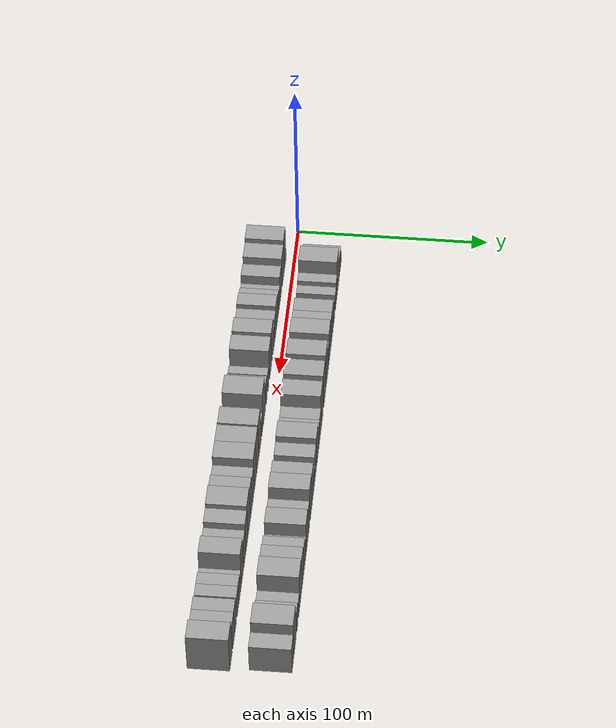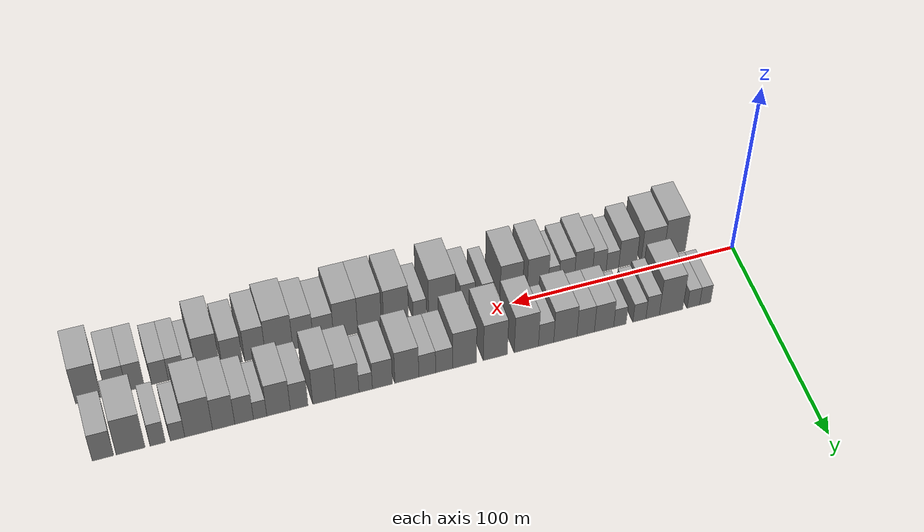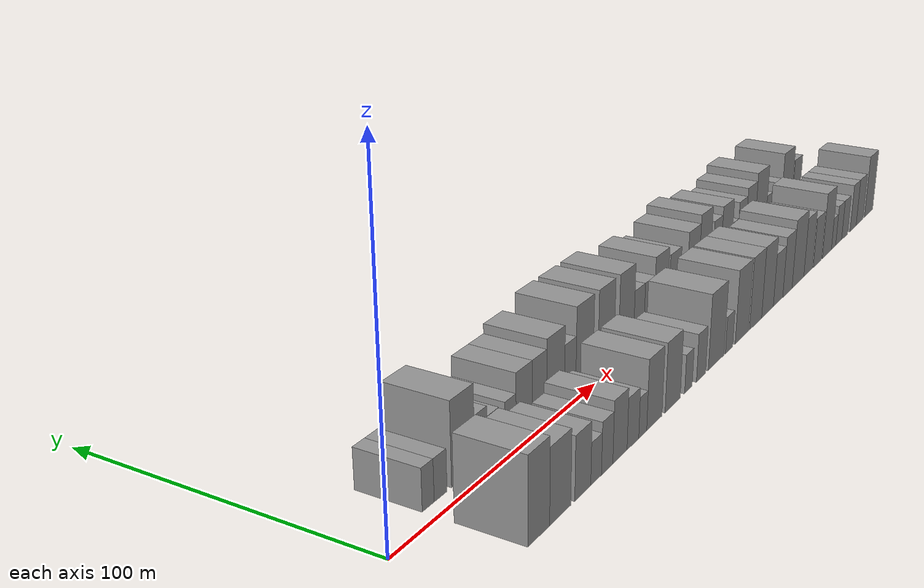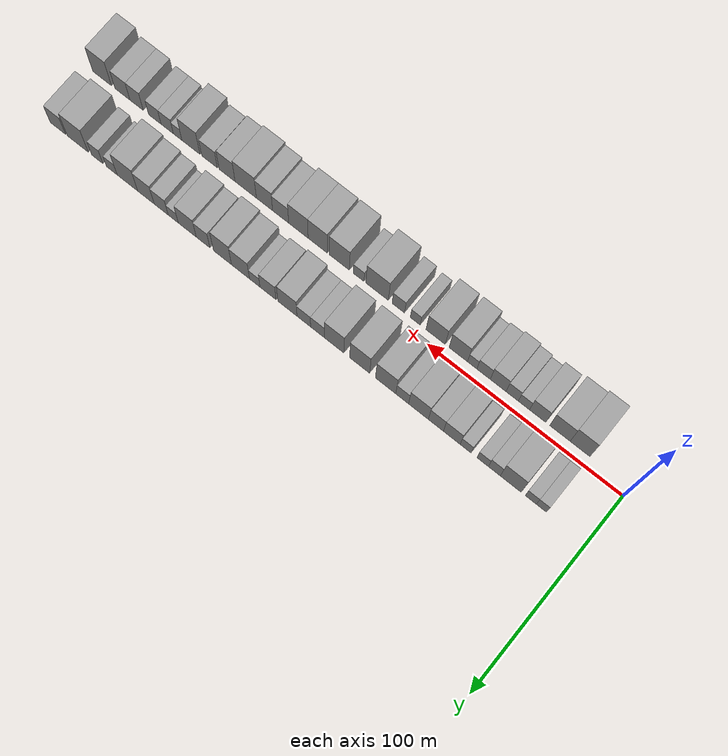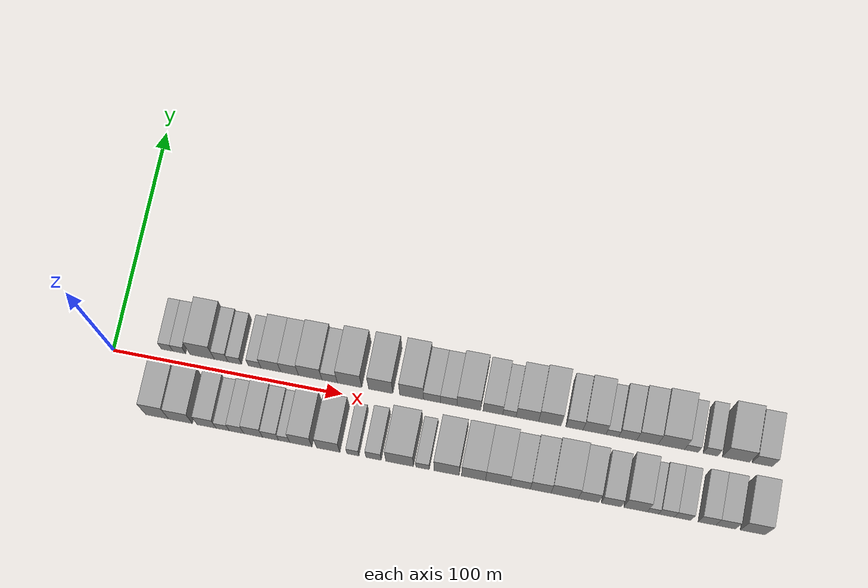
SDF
<sdf version="1.6">
 <world name="default">
  <scene>
   <sky><clouds><speed>12</speed></clouds></sky>
   <ambient>0.4 0.4 0.4 1</ambient>
   <background>0.7 0.7 0.7 1</background>
   <shadows>1</shadows>
  </scene>
  <gravity>0 0 -9.8066</gravity>
  <magnetic_field>6e-06 2.3e-05 -4.2e-05</magnetic_field>
  <physics default="0" name="default_physics" type="ode">
   <ode>
    <solver>
     <type>quick</type>
     <iters>10</iters>
     <sor>1.0</sor>
     <use_dynamic_moi_rescaling>0</use_dynamic_moi_rescaling>
    </solver>
    <constraints>
     <cfm>0</cfm>
     <erp>0.2</erp>
     <contact_max_correcting_vel>100</contact_max_correcting_vel>
     <contact_surface_layer>0.001</contact_surface_layer>
    </constraints>
   </ode>
   <max_step_size>0.004</max_step_size>
   <real_time_factor>1</real_time_factor>
   <real_time_update_rate>250</real_time_update_rate>
  </physics>
  <light name="sun" type="directional">
   <pose>0 0 10 0 0 0</pose>
   <diffuse>0.8 0.8 0.8 1</diffuse>
   <specular>0.2 0.2 0.2 1</specular>
   <attenuation>
    <range>1000</range>
    <constant>0.9</constant>
    <linear>0.01</linear>
    <quadratic>0.001</quadratic>
   </attenuation>
   <direction>-0.5 0.1 -0.9</direction>
  </light>
  <model name="building_1">
   <static>1</static>
   <pose>22.5390 14.5000 0 0.000000 0.000000 1.570796</pose>
   <link name="link">
    <pose>0 0 6.00 0 0 0</pose>
    <collision name="collision"><geometry><box><size>20.0000 5.0780 12.0000</size></box></geometry></collision>
    <visual name="visual">
     <cast_shadows>0</cast_shadows>
     <geometry><box><size>20.0000 5.0780 12.0000</size></box></geometry>
     <material>
      <script>
       <uri>model://grey_wall/materials/scripts</uri>
       <uri>model://grey_wall/materials/textures</uri>
       <name>vrc/grey_wall</name>
      </script>
     </material>
    </visual>
   </link>
  </model>
  <model name="building_2">
   <static>1</static>
   <pose>27.8848 14.5000 0 0.000000 0.000000 1.570796</pose>
   <link name="link">
    <pose>0 0 6.00 0 0 0</pose>
    <collision name="collision"><geometry><box><size>20.0000 5.6136 12.0000</size></box></geometry></collision>
    <visual name="visual">
     <cast_shadows>0</cast_shadows>
     <geometry><box><size>20.0000 5.6136 12.0000</size></box></geometry>
     <material>
      <script>
       <uri>model://grey_wall/materials/scripts</uri>
       <uri>model://grey_wall/materials/textures</uri>
       <name>vrc/grey_wall</name>
      </script>
     </material>
    </visual>
   </link>
  </model>
  <model name="building_3">
   <static>1</static>
   <pose>37.9862 14.5000 0 0.000000 0.000000 1.570796</pose>
   <link name="link">
    <pose>0 0 12.00 0 0 0</pose>
    <collision name="collision"><geometry><box><size>20.0000 10.5893 24.0000</size></box></geometry></collision>
    <visual name="visual">
     <cast_shadows>0</cast_shadows>
     <geometry><box><size>20.0000 10.5893 24.0000</size></box></geometry>
     <material>
      <script>
       <uri>model://grey_wall/materials/scripts</uri>
       <uri>model://grey_wall/materials/textures</uri>
       <name>vrc/grey_wall</name>
      </script>
     </material>
    </visual>
   </link>
  </model>
  <model name="building_4">
   <static>1</static>
   <pose>46.3003 14.5000 0 0.000000 0.000000 1.570796</pose>
   <link name="link">
    <pose>0 0 7.50 0 0 0</pose>
    <collision name="collision"><geometry><box><size>20.0000 6.0389 15.0000</size></box></geometry></collision>
    <visual name="visual">
     <cast_shadows>0</cast_shadows>
     <geometry><box><size>20.0000 6.0389 15.0000</size></box></geometry>
     <material>
      <script>
       <uri>model://grey_wall/materials/scripts</uri>
       <uri>model://grey_wall/materials/textures</uri>
       <name>vrc/grey_wall</name>
      </script>
     </material>
    </visual>
   </link>
  </model>
  <model name="building_5">
   <static>1</static>
   <pose>52.2205 14.5000 0 0.000000 0.000000 1.570796</pose>
   <link name="link">
    <pose>0 0 6.00 0 0 0</pose>
    <collision name="collision"><geometry><box><size>20.0000 5.8016 12.0000</size></box></geometry></collision>
    <visual name="visual">
     <cast_shadows>0</cast_shadows>
     <geometry><box><size>20.0000 5.8016 12.0000</size></box></geometry>
     <material>
      <script>
       <uri>model://grey_wall/materials/scripts</uri>
       <uri>model://grey_wall/materials/textures</uri>
       <name>vrc/grey_wall</name>
      </script>
     </material>
    </visual>
   </link>
  </model>
  <model name="building_6">
   <static>1</static>
   <pose>60.9274 14.5000 0 0.000000 0.000000 1.570796</pose>
   <link name="link">
    <pose>0 0 6.00 0 0 0</pose>
    <collision name="collision"><geometry><box><size>20.0000 5.6122 12.0000</size></box></geometry></collision>
    <visual name="visual">
     <cast_shadows>0</cast_shadows>
     <geometry><box><size>20.0000 5.6122 12.0000</size></box></geometry>
     <material>
      <script>
       <uri>model://grey_wall/materials/scripts</uri>
       <uri>model://grey_wall/materials/textures</uri>
       <name>vrc/grey_wall</name>
      </script>
     </material>
    </visual>
   </link>
  </model>
  <model name="building_7">
   <static>1</static>
   <pose>68.0220 14.5000 0 0.000000 0.000000 1.570796</pose>
   <link name="link">
    <pose>0 0 9.00 0 0 0</pose>
    <collision name="collision"><geometry><box><size>20.0000 8.5771 18.0000</size></box></geometry></collision>
    <visual name="visual">
     <cast_shadows>0</cast_shadows>
     <geometry><box><size>20.0000 8.5771 18.0000</size></box></geometry>
     <material>
      <script>
       <uri>model://grey_wall/materials/scripts</uri>
       <uri>model://grey_wall/materials/textures</uri>
       <name>vrc/grey_wall</name>
      </script>
     </material>
    </visual>
   </link>
  </model>
  <model name="building_8">
   <static>1</static>
   <pose>76.1881 14.5000 0 0.000000 0.000000 1.570796</pose>
   <link name="link">
    <pose>0 0 9.00 0 0 0</pose>
    <collision name="collision"><geometry><box><size>20.0000 7.7549 18.0000</size></box></geometry></collision>
    <visual name="visual">
     <cast_shadows>0</cast_shadows>
     <geometry><box><size>20.0000 7.7549 18.0000</size></box></geometry>
     <material>
      <script>
       <uri>model://grey_wall/materials/scripts</uri>
       <uri>model://grey_wall/materials/textures</uri>
       <name>vrc/grey_wall</name>
      </script>
     </material>
    </visual>
   </link>
  </model>
  <model name="building_9">
   <static>1</static>
   <pose>85.1828 14.5000 0 0.000000 0.000000 1.570796</pose>
   <link name="link">
    <pose>0 0 10.50 0 0 0</pose>
    <collision name="collision"><geometry><box><size>20.0000 10.2346 21.0000</size></box></geometry></collision>
    <visual name="visual">
     <cast_shadows>0</cast_shadows>
     <geometry><box><size>20.0000 10.2346 21.0000</size></box></geometry>
     <material>
      <script>
       <uri>model://grey_wall/materials/scripts</uri>
       <uri>model://grey_wall/materials/textures</uri>
       <name>vrc/grey_wall</name>
      </script>
     </material>
    </visual>
   </link>
  </model>
  <model name="building_10">
   <static>1</static>
   <pose>93.6424 14.5000 0 0.000000 0.000000 1.570796</pose>
   <link name="link">
    <pose>0 0 7.50 0 0 0</pose>
    <collision name="collision"><geometry><box><size>20.0000 6.6845 15.0000</size></box></geometry></collision>
    <visual name="visual">
     <cast_shadows>0</cast_shadows>
     <geometry><box><size>20.0000 6.6845 15.0000</size></box></geometry>
     <material>
      <script>
       <uri>model://grey_wall/materials/scripts</uri>
       <uri>model://grey_wall/materials/textures</uri>
       <name>vrc/grey_wall</name>
      </script>
     </material>
    </visual>
   </link>
  </model>
  <model name="building_11">
   <static>1</static>
   <pose>102.2817 14.5000 0 0.000000 0.000000 1.570796</pose>
   <link name="link">
    <pose>0 0 12.00 0 0 0</pose>
    <collision name="collision"><geometry><box><size>20.0000 10.5940 24.0000</size></box></geometry></collision>
    <visual name="visual">
     <cast_shadows>0</cast_shadows>
     <geometry><box><size>20.0000 10.5940 24.0000</size></box></geometry>
     <material>
      <script>
       <uri>model://grey_wall/materials/scripts</uri>
       <uri>model://grey_wall/materials/textures</uri>
       <name>vrc/grey_wall</name>
      </script>
     </material>
    </visual>
   </link>
  </model>
  <model name="building_12">
   <static>1</static>
   <pose>115.8133 14.5000 0 0.000000 0.000000 1.570796</pose>
   <link name="link">
    <pose>0 0 12.00 0 0 0</pose>
    <collision name="collision"><geometry><box><size>20.0000 10.4693 24.0000</size></box></geometry></collision>
    <visual name="visual">
     <cast_shadows>0</cast_shadows>
     <geometry><box><size>20.0000 10.4693 24.0000</size></box></geometry>
     <material>
      <script>
       <uri>model://grey_wall/materials/scripts</uri>
       <uri>model://grey_wall/materials/textures</uri>
       <name>vrc/grey_wall</name>
      </script>
     </material>
    </visual>
   </link>
  </model>
  <model name="building_13">
   <static>1</static>
   <pose>129.2058 14.5000 0 0.000000 0.000000 1.570796</pose>
   <link name="link">
    <pose>0 0 12.00 0 0 0</pose>
    <collision name="collision"><geometry><box><size>20.0000 10.3158 24.0000</size></box></geometry></collision>
    <visual name="visual">
     <cast_shadows>0</cast_shadows>
     <geometry><box><size>20.0000 10.3158 24.0000</size></box></geometry>
     <material>
      <script>
       <uri>model://grey_wall/materials/scripts</uri>
       <uri>model://grey_wall/materials/textures</uri>
       <name>vrc/grey_wall</name>
      </script>
     </material>
    </visual>
   </link>
  </model>
  <model name="building_14">
   <static>1</static>
   <pose>138.0146 14.5000 0 0.000000 0.000000 1.570796</pose>
   <link name="link">
    <pose>0 0 7.50 0 0 0</pose>
    <collision name="collision"><geometry><box><size>20.0000 7.3017 15.0000</size></box></geometry></collision>
    <visual name="visual">
     <cast_shadows>0</cast_shadows>
     <geometry><box><size>20.0000 7.3017 15.0000</size></box></geometry>
     <material>
      <script>
       <uri>model://grey_wall/materials/scripts</uri>
       <uri>model://grey_wall/materials/textures</uri>
       <name>vrc/grey_wall</name>
      </script>
     </material>
    </visual>
   </link>
  </model>
  <model name="building_15">
   <static>1</static>
   <pose>145.2648 14.5000 0 0.000000 0.000000 1.570796</pose>
   <link name="link">
    <pose>0 0 7.50 0 0 0</pose>
    <collision name="collision"><geometry><box><size>20.0000 7.1987 15.0000</size></box></geometry></collision>
    <visual name="visual">
     <cast_shadows>0</cast_shadows>
     <geometry><box><size>20.0000 7.1987 15.0000</size></box></geometry>
     <material>
      <script>
       <uri>model://grey_wall/materials/scripts</uri>
       <uri>model://grey_wall/materials/textures</uri>
       <name>vrc/grey_wall</name>
      </script>
     </material>
    </visual>
   </link>
  </model>
  <model name="building_16">
   <static>1</static>
   <pose>153.9659 14.5000 0 0.000000 0.000000 1.570796</pose>
   <link name="link">
    <pose>0 0 10.50 0 0 0</pose>
    <collision name="collision"><geometry><box><size>20.0000 10.2035 21.0000</size></box></geometry></collision>
    <visual name="visual">
     <cast_shadows>0</cast_shadows>
     <geometry><box><size>20.0000 10.2035 21.0000</size></box></geometry>
     <material>
      <script>
       <uri>model://grey_wall/materials/scripts</uri>
       <uri>model://grey_wall/materials/textures</uri>
       <name>vrc/grey_wall</name>
      </script>
     </material>
    </visual>
   </link>
  </model>
  <model name="building_17">
   <static>1</static>
   <pose>164.3430 14.5000 0 0.000000 0.000000 1.570796</pose>
   <link name="link">
    <pose>0 0 9.00 0 0 0</pose>
    <collision name="collision"><geometry><box><size>20.0000 8.5507 18.0000</size></box></geometry></collision>
    <visual name="visual">
     <cast_shadows>0</cast_shadows>
     <geometry><box><size>20.0000 8.5507 18.0000</size></box></geometry>
     <material>
      <script>
       <uri>model://grey_wall/materials/scripts</uri>
       <uri>model://grey_wall/materials/textures</uri>
       <name>vrc/grey_wall</name>
      </script>
     </material>
    </visual>
   </link>
  </model>
  <model name="building_18">
   <static>1</static>
   <pose>171.4657 14.5000 0 0.000000 0.000000 1.570796</pose>
   <link name="link">
    <pose>0 0 6.00 0 0 0</pose>
    <collision name="collision"><geometry><box><size>20.0000 5.6948 12.0000</size></box></geometry></collision>
    <visual name="visual">
     <cast_shadows>0</cast_shadows>
     <geometry><box><size>20.0000 5.6948 12.0000</size></box></geometry>
     <material>
      <script>
       <uri>model://grey_wall/materials/scripts</uri>
       <uri>model://grey_wall/materials/textures</uri>
       <name>vrc/grey_wall</name>
      </script>
     </material>
    </visual>
   </link>
  </model>
  <model name="building_19">
   <static>1</static>
   <pose>179.1541 14.5000 0 0.000000 0.000000 1.570796</pose>
   <link name="link">
    <pose>0 0 10.50 0 0 0</pose>
    <collision name="collision"><geometry><box><size>20.0000 9.6819 21.0000</size></box></geometry></collision>
    <visual name="visual">
     <cast_shadows>0</cast_shadows>
     <geometry><box><size>20.0000 9.6819 21.0000</size></box></geometry>
     <material>
      <script>
       <uri>model://grey_wall/materials/scripts</uri>
       <uri>model://grey_wall/materials/textures</uri>
       <name>vrc/grey_wall</name>
      </script>
     </material>
    </visual>
   </link>
  </model>
  <model name="building_20">
   <static>1</static>
   <pose>188.8619 14.5000 0 0.000000 0.000000 1.570796</pose>
   <link name="link">
    <pose>0 0 12.00 0 0 0</pose>
    <collision name="collision"><geometry><box><size>20.0000 9.7337 24.0000</size></box></geometry></collision>
    <visual name="visual">
     <cast_shadows>0</cast_shadows>
     <geometry><box><size>20.0000 9.7337 24.0000</size></box></geometry>
     <material>
      <script>
       <uri>model://grey_wall/materials/scripts</uri>
       <uri>model://grey_wall/materials/textures</uri>
       <name>vrc/grey_wall</name>
      </script>
     </material>
    </visual>
   </link>
  </model>
  <model name="building_21">
   <static>1</static>
   <pose>199.4369 14.5000 0 0.000000 0.000000 1.570796</pose>
   <link name="link">
    <pose>0 0 9.00 0 0 0</pose>
    <collision name="collision"><geometry><box><size>20.0000 7.4164 18.0000</size></box></geometry></collision>
    <visual name="visual">
     <cast_shadows>0</cast_shadows>
     <geometry><box><size>20.0000 7.4164 18.0000</size></box></geometry>
     <material>
      <script>
       <uri>model://grey_wall/materials/scripts</uri>
       <uri>model://grey_wall/materials/textures</uri>
       <name>vrc/grey_wall</name>
      </script>
     </material>
    </visual>
   </link>
  </model>
  <model name="building_22">
   <static>1</static>
   <pose>208.0406 14.5000 0 0.000000 0.000000 1.570796</pose>
   <link name="link">
    <pose>0 0 10.50 0 0 0</pose>
    <collision name="collision"><geometry><box><size>20.0000 9.7910 21.0000</size></box></geometry></collision>
    <visual name="visual">
     <cast_shadows>0</cast_shadows>
     <geometry><box><size>20.0000 9.7910 21.0000</size></box></geometry>
     <material>
      <script>
       <uri>model://grey_wall/materials/scripts</uri>
       <uri>model://grey_wall/materials/textures</uri>
       <name>vrc/grey_wall</name>
      </script>
     </material>
    </visual>
   </link>
  </model>
  <model name="building_23">
   <static>1</static>
   <pose>215.6830 14.5000 0 0.000000 0.000000 1.570796</pose>
   <link name="link">
    <pose>0 0 6.00 0 0 0</pose>
    <collision name="collision"><geometry><box><size>20.0000 5.4938 12.0000</size></box></geometry></collision>
    <visual name="visual">
     <cast_shadows>0</cast_shadows>
     <geometry><box><size>20.0000 5.4938 12.0000</size></box></geometry>
     <material>
      <script>
       <uri>model://grey_wall/materials/scripts</uri>
       <uri>model://grey_wall/materials/textures</uri>
       <name>vrc/grey_wall</name>
      </script>
     </material>
    </visual>
   </link>
  </model>
  <model name="building_24">
   <static>1</static>
   <pose>222.2997 14.5000 0 0.000000 0.000000 1.570796</pose>
   <link name="link">
    <pose>0 0 9.00 0 0 0</pose>
    <collision name="collision"><geometry><box><size>20.0000 7.7396 18.0000</size></box></geometry></collision>
    <visual name="visual">
     <cast_shadows>0</cast_shadows>
     <geometry><box><size>20.0000 7.7396 18.0000</size></box></geometry>
     <material>
      <script>
       <uri>model://grey_wall/materials/scripts</uri>
       <uri>model://grey_wall/materials/textures</uri>
       <name>vrc/grey_wall</name>
      </script>
     </material>
    </visual>
   </link>
  </model>
  <model name="building_25">
   <static>1</static>
   <pose>230.7460 14.5000 0 0.000000 0.000000 1.570796</pose>
   <link name="link">
    <pose>0 0 10.50 0 0 0</pose>
    <collision name="collision"><geometry><box><size>20.0000 9.1529 21.0000</size></box></geometry></collision>
    <visual name="visual">
     <cast_shadows>0</cast_shadows>
     <geometry><box><size>20.0000 9.1529 21.0000</size></box></geometry>
     <material>
      <script>
       <uri>model://grey_wall/materials/scripts</uri>
       <uri>model://grey_wall/materials/textures</uri>
       <name>vrc/grey_wall</name>
      </script>
     </material>
    </visual>
   </link>
  </model>
  <model name="building_26">
   <static>1</static>
   <pose>240.9980 14.5000 0 0.000000 0.000000 1.570796</pose>
   <link name="link">
    <pose>0 0 12.00 0 0 0</pose>
    <collision name="collision"><geometry><box><size>20.0000 11.3510 24.0000</size></box></geometry></collision>
    <visual name="visual">
     <cast_shadows>0</cast_shadows>
     <geometry><box><size>20.0000 11.3510 24.0000</size></box></geometry>
     <material>
      <script>
       <uri>model://grey_wall/materials/scripts</uri>
       <uri>model://grey_wall/materials/textures</uri>
       <name>vrc/grey_wall</name>
      </script>
     </material>
    </visual>
   </link>
  </model>
  <model name="building_27">
   <static>1</static>
   <pose>249.6406 14.5000 0 0.000000 0.000000 1.570796</pose>
   <link name="link">
    <pose>0 0 6.00 0 0 0</pose>
    <collision name="collision"><geometry><box><size>20.0000 5.9344 12.0000</size></box></geometry></collision>
    <visual name="visual">
     <cast_shadows>0</cast_shadows>
     <geometry><box><size>20.0000 5.9344 12.0000</size></box></geometry>
     <material>
      <script>
       <uri>model://grey_wall/materials/scripts</uri>
       <uri>model://grey_wall/materials/textures</uri>
       <name>vrc/grey_wall</name>
      </script>
     </material>
    </visual>
   </link>
  </model>
  <model name="building_28">
   <static>1</static>
   <pose>257.7267 14.5000 0 0.000000 0.000000 1.570796</pose>
   <link name="link">
    <pose>0 0 7.50 0 0 0</pose>
    <collision name="collision"><geometry><box><size>20.0000 6.2377 15.0000</size></box></geometry></collision>
    <visual name="visual">
     <cast_shadows>0</cast_shadows>
     <geometry><box><size>20.0000 6.2377 15.0000</size></box></geometry>
     <material>
      <script>
       <uri>model://grey_wall/materials/scripts</uri>
       <uri>model://grey_wall/materials/textures</uri>
       <name>vrc/grey_wall</name>
      </script>
     </material>
    </visual>
   </link>
  </model>
  <model name="building_29">
   <static>1</static>
   <pose>268.7021 14.5000 0 0.000000 0.000000 1.570796</pose>
   <link name="link">
    <pose>0 0 12.00 0 0 0</pose>
    <collision name="collision"><geometry><box><size>20.0000 11.7132 24.0000</size></box></geometry></collision>
    <visual name="visual">
     <cast_shadows>0</cast_shadows>
     <geometry><box><size>20.0000 11.7132 24.0000</size></box></geometry>
     <material>
      <script>
       <uri>model://grey_wall/materials/scripts</uri>
       <uri>model://grey_wall/materials/textures</uri>
       <name>vrc/grey_wall</name>
      </script>
     </material>
    </visual>
   </link>
  </model>
  <model name="building_30">
   <static>1</static>
   <pose>279.8736 14.5000 0 0.000000 0.000000 1.570796</pose>
   <link name="link">
    <pose>0 0 9.00 0 0 0</pose>
    <collision name="collision"><geometry><box><size>20.0000 8.6298 18.0000</size></box></geometry></collision>
    <visual name="visual">
     <cast_shadows>0</cast_shadows>
     <geometry><box><size>20.0000 8.6298 18.0000</size></box></geometry>
     <material>
      <script>
       <uri>model://grey_wall/materials/scripts</uri>
       <uri>model://grey_wall/materials/textures</uri>
       <name>vrc/grey_wall</name>
      </script>
     </material>
    </visual>
   </link>
  </model>
  <model name="building_31">
   <static>1</static>
   <pose>24.9978 -14.5000 0 0.000000 0.000000 1.570796</pose>
   <link name="link">
    <pose>0 0 12.00 0 0 0</pose>
    <collision name="collision"><geometry><box><size>20.0000 9.9957 24.0000</size></box></geometry></collision>
    <visual name="visual">
     <cast_shadows>0</cast_shadows>
     <geometry><box><size>20.0000 9.9957 24.0000</size></box></geometry>
     <material>
      <script>
       <uri>model://grey_wall/materials/scripts</uri>
       <uri>model://grey_wall/materials/textures</uri>
       <name>vrc/grey_wall</name>
      </script>
     </material>
    </visual>
   </link>
  </model>
  <model name="building_32">
   <static>1</static>
   <pose>35.1719 -14.5000 0 0.000000 0.000000 1.570796</pose>
   <link name="link">
    <pose>0 0 10.50 0 0 0</pose>
    <collision name="collision"><geometry><box><size>20.0000 10.3525 21.0000</size></box></geometry></collision>
    <visual name="visual">
     <cast_shadows>0</cast_shadows>
     <geometry><box><size>20.0000 10.3525 21.0000</size></box></geometry>
     <material>
      <script>
       <uri>model://grey_wall/materials/scripts</uri>
       <uri>model://grey_wall/materials/textures</uri>
       <name>vrc/grey_wall</name>
      </script>
     </material>
    </visual>
   </link>
  </model>
  <model name="building_33">
   <static>1</static>
   <pose>46.4838 -14.5000 0 0.000000 0.000000 1.570796</pose>
   <link name="link">
    <pose>0 0 9.00 0 0 0</pose>
    <collision name="collision"><geometry><box><size>20.0000 8.2713 18.0000</size></box></geometry></collision>
    <visual name="visual">
     <cast_shadows>0</cast_shadows>
     <geometry><box><size>20.0000 8.2713 18.0000</size></box></geometry>
     <material>
      <script>
       <uri>model://grey_wall/materials/scripts</uri>
       <uri>model://grey_wall/materials/textures</uri>
       <name>vrc/grey_wall</name>
      </script>
     </material>
    </visual>
   </link>
  </model>
  <model name="building_34">
   <static>1</static>
   <pose>53.4908 -14.5000 0 0.000000 0.000000 1.570796</pose>
   <link name="link">
    <pose>0 0 6.00 0 0 0</pose>
    <collision name="collision"><geometry><box><size>20.0000 5.7425 12.0000</size></box></geometry></collision>
    <visual name="visual">
     <cast_shadows>0</cast_shadows>
     <geometry><box><size>20.0000 5.7425 12.0000</size></box></geometry>
     <material>
      <script>
       <uri>model://grey_wall/materials/scripts</uri>
       <uri>model://grey_wall/materials/textures</uri>
       <name>vrc/grey_wall</name>
      </script>
     </material>
    </visual>
   </link>
  </model>
  <model name="building_35">
   <static>1</static>
   <pose>59.5027 -14.5000 0 0.000000 0.000000 1.570796</pose>
   <link name="link">
    <pose>0 0 7.50 0 0 0</pose>
    <collision name="collision"><geometry><box><size>20.0000 6.2814 15.0000</size></box></geometry></collision>
    <visual name="visual">
     <cast_shadows>0</cast_shadows>
     <geometry><box><size>20.0000 6.2814 15.0000</size></box></geometry>
     <material>
      <script>
       <uri>model://grey_wall/materials/scripts</uri>
       <uri>model://grey_wall/materials/textures</uri>
       <name>vrc/grey_wall</name>
      </script>
     </material>
    </visual>
   </link>
  </model>
  <model name="building_36">
   <static>1</static>
   <pose>66.7099 -14.5000 0 0.000000 0.000000 1.570796</pose>
   <link name="link">
    <pose>0 0 9.00 0 0 0</pose>
    <collision name="collision"><geometry><box><size>20.0000 8.1328 18.0000</size></box></geometry></collision>
    <visual name="visual">
     <cast_shadows>0</cast_shadows>
     <geometry><box><size>20.0000 8.1328 18.0000</size></box></geometry>
     <material>
      <script>
       <uri>model://grey_wall/materials/scripts</uri>
       <uri>model://grey_wall/materials/textures</uri>
       <name>vrc/grey_wall</name>
      </script>
     </material>
    </visual>
   </link>
  </model>
  <model name="building_37">
   <static>1</static>
   <pose>74.2313 -14.5000 0 0.000000 0.000000 1.570796</pose>
   <link name="link">
    <pose>0 0 7.50 0 0 0</pose>
    <collision name="collision"><geometry><box><size>20.0000 6.9101 15.0000</size></box></geometry></collision>
    <visual name="visual">
     <cast_shadows>0</cast_shadows>
     <geometry><box><size>20.0000 6.9101 15.0000</size></box></geometry>
     <material>
      <script>
       <uri>model://grey_wall/materials/scripts</uri>
       <uri>model://grey_wall/materials/textures</uri>
       <name>vrc/grey_wall</name>
      </script>
     </material>
    </visual>
   </link>
  </model>
  <model name="building_38">
   <static>1</static>
   <pose>80.1101 -14.5000 0 0.000000 0.000000 1.570796</pose>
   <link name="link">
    <pose>0 0 6.00 0 0 0</pose>
    <collision name="collision"><geometry><box><size>20.0000 4.8475 12.0000</size></box></geometry></collision>
    <visual name="visual">
     <cast_shadows>0</cast_shadows>
     <geometry><box><size>20.0000 4.8475 12.0000</size></box></geometry>
     <material>
      <script>
       <uri>model://grey_wall/materials/scripts</uri>
       <uri>model://grey_wall/materials/textures</uri>
       <name>vrc/grey_wall</name>
      </script>
     </material>
    </visual>
   </link>
  </model>
  <model name="building_39">
   <static>1</static>
   <pose>87.3218 -14.5000 0 0.000000 0.000000 1.570796</pose>
   <link name="link">
    <pose>0 0 10.50 0 0 0</pose>
    <collision name="collision"><geometry><box><size>20.0000 9.5760 21.0000</size></box></geometry></collision>
    <visual name="visual">
     <cast_shadows>0</cast_shadows>
     <geometry><box><size>20.0000 9.5760 21.0000</size></box></geometry>
     <material>
      <script>
       <uri>model://grey_wall/materials/scripts</uri>
       <uri>model://grey_wall/materials/textures</uri>
       <name>vrc/grey_wall</name>
      </script>
     </material>
    </visual>
   </link>
  </model>
  <model name="building_40">
   <static>1</static>
   <pose>99.1305 -14.5000 0 0.000000 0.000000 1.570796</pose>
   <link name="link">
    <pose>0 0 10.50 0 0 0</pose>
    <collision name="collision"><geometry><box><size>20.0000 10.0414 21.0000</size></box></geometry></collision>
    <visual name="visual">
     <cast_shadows>0</cast_shadows>
     <geometry><box><size>20.0000 10.0414 21.0000</size></box></geometry>
     <material>
      <script>
       <uri>model://grey_wall/materials/scripts</uri>
       <uri>model://grey_wall/materials/textures</uri>
       <name>vrc/grey_wall</name>
      </script>
     </material>
    </visual>
   </link>
  </model>
  <model name="building_41">
   <static>1</static>
   <pose>109.7678 -14.5000 0 0.000000 0.000000 1.570796</pose>
   <link name="link">
    <pose>0 0 6.00 0 0 0</pose>
    <collision name="collision"><geometry><box><size>20.0000 5.2331 12.0000</size></box></geometry></collision>
    <visual name="visual">
     <cast_shadows>0</cast_shadows>
     <geometry><box><size>20.0000 5.2331 12.0000</size></box></geometry>
     <material>
      <script>
       <uri>model://grey_wall/materials/scripts</uri>
       <uri>model://grey_wall/materials/textures</uri>
       <name>vrc/grey_wall</name>
      </script>
     </material>
    </visual>
   </link>
  </model>
  <model name="building_42">
   <static>1</static>
   <pose>118.6643 -14.5000 0 0.000000 0.000000 1.570796</pose>
   <link name="link">
    <pose>0 0 7.50 0 0 0</pose>
    <collision name="collision"><geometry><box><size>20.0000 6.5601 15.0000</size></box></geometry></collision>
    <visual name="visual">
     <cast_shadows>0</cast_shadows>
     <geometry><box><size>20.0000 6.5601 15.0000</size></box></geometry>
     <material>
      <script>
       <uri>model://grey_wall/materials/scripts</uri>
       <uri>model://grey_wall/materials/textures</uri>
       <name>vrc/grey_wall</name>
      </script>
     </material>
    </visual>
   </link>
  </model>
  <model name="building_43">
   <static>1</static>
   <pose>129.8770 -14.5000 0 0.000000 0.000000 1.570796</pose>
   <link name="link">
    <pose>0 0 12.00 0 0 0</pose>
    <collision name="collision"><geometry><box><size>20.0000 11.8653 24.0000</size></box></geometry></collision>
    <visual name="visual">
     <cast_shadows>0</cast_shadows>
     <geometry><box><size>20.0000 11.8653 24.0000</size></box></geometry>
     <material>
      <script>
       <uri>model://grey_wall/materials/scripts</uri>
       <uri>model://grey_wall/materials/textures</uri>
       <name>vrc/grey_wall</name>
      </script>
     </material>
    </visual>
   </link>
  </model>
  <model name="building_44">
   <static>1</static>
   <pose>139.6885 -14.5000 0 0.000000 0.000000 1.570796</pose>
   <link name="link">
    <pose>0 0 6.00 0 0 0</pose>
    <collision name="collision"><geometry><box><size>20.0000 5.7577 12.0000</size></box></geometry></collision>
    <visual name="visual">
     <cast_shadows>0</cast_shadows>
     <geometry><box><size>20.0000 5.7577 12.0000</size></box></geometry>
     <material>
      <script>
       <uri>model://grey_wall/materials/scripts</uri>
       <uri>model://grey_wall/materials/textures</uri>
       <name>vrc/grey_wall</name>
      </script>
     </material>
    </visual>
   </link>
  </model>
  <model name="building_45">
   <static>1</static>
   <pose>149.9659 -14.5000 0 0.000000 0.000000 1.570796</pose>
   <link name="link">
    <pose>0 0 12.00 0 0 0</pose>
    <collision name="collision"><geometry><box><size>20.0000 10.7970 24.0000</size></box></geometry></collision>
    <visual name="visual">
     <cast_shadows>0</cast_shadows>
     <geometry><box><size>20.0000 10.7970 24.0000</size></box></geometry>
     <material>
      <script>
       <uri>model://grey_wall/materials/scripts</uri>
       <uri>model://grey_wall/materials/textures</uri>
       <name>vrc/grey_wall</name>
      </script>
     </material>
    </visual>
   </link>
  </model>
  <model name="building_46">
   <static>1</static>
   <pose>161.5160 -14.5000 0 0.000000 0.000000 1.570796</pose>
   <link name="link">
    <pose>0 0 12.00 0 0 0</pose>
    <collision name="collision"><geometry><box><size>20.0000 10.3033 24.0000</size></box></geometry></collision>
    <visual name="visual">
     <cast_shadows>0</cast_shadows>
     <geometry><box><size>20.0000 10.3033 24.0000</size></box></geometry>
     <material>
      <script>
       <uri>model://grey_wall/materials/scripts</uri>
       <uri>model://grey_wall/materials/textures</uri>
       <name>vrc/grey_wall</name>
      </script>
     </material>
    </visual>
   </link>
  </model>
  <model name="building_47">
   <static>1</static>
   <pose>171.8872 -14.5000 0 0.000000 0.000000 1.570796</pose>
   <link name="link">
    <pose>0 0 12.00 0 0 0</pose>
    <collision name="collision"><geometry><box><size>20.0000 10.4391 24.0000</size></box></geometry></collision>
    <visual name="visual">
     <cast_shadows>0</cast_shadows>
     <geometry><box><size>20.0000 10.4391 24.0000</size></box></geometry>
     <material>
      <script>
       <uri>model://grey_wall/materials/scripts</uri>
       <uri>model://grey_wall/materials/textures</uri>
       <name>vrc/grey_wall</name>
      </script>
     </material>
    </visual>
   </link>
  </model>
  <model name="building_48">
   <static>1</static>
   <pose>181.4517 -14.5000 0 0.000000 0.000000 1.570796</pose>
   <link name="link">
    <pose>0 0 9.00 0 0 0</pose>
    <collision name="collision"><geometry><box><size>20.0000 8.6899 18.0000</size></box></geometry></collision>
    <visual name="visual">
     <cast_shadows>0</cast_shadows>
     <geometry><box><size>20.0000 8.6899 18.0000</size></box></geometry>
     <material>
      <script>
       <uri>model://grey_wall/materials/scripts</uri>
       <uri>model://grey_wall/materials/textures</uri>
       <name>vrc/grey_wall</name>
      </script>
     </material>
    </visual>
   </link>
  </model>
  <model name="building_49">
   <static>1</static>
   <pose>190.2039 -14.5000 0 0.000000 0.000000 1.570796</pose>
   <link name="link">
    <pose>0 0 10.50 0 0 0</pose>
    <collision name="collision"><geometry><box><size>20.0000 8.8146 21.0000</size></box></geometry></collision>
    <visual name="visual">
     <cast_shadows>0</cast_shadows>
     <geometry><box><size>20.0000 8.8146 21.0000</size></box></geometry>
     <material>
      <script>
       <uri>model://grey_wall/materials/scripts</uri>
       <uri>model://grey_wall/materials/textures</uri>
       <name>vrc/grey_wall</name>
      </script>
     </material>
    </visual>
   </link>
  </model>
  <model name="building_50">
   <static>1</static>
   <pose>200.4456 -14.5000 0 0.000000 0.000000 1.570796</pose>
   <link name="link">
    <pose>0 0 12.00 0 0 0</pose>
    <collision name="collision"><geometry><box><size>20.0000 11.6687 24.0000</size></box></geometry></collision>
    <visual name="visual">
     <cast_shadows>0</cast_shadows>
     <geometry><box><size>20.0000 11.6687 24.0000</size></box></geometry>
     <material>
      <script>
       <uri>model://grey_wall/materials/scripts</uri>
       <uri>model://grey_wall/materials/textures</uri>
       <name>vrc/grey_wall</name>
      </script>
     </material>
    </visual>
   </link>
  </model>
  <model name="building_51">
   <static>1</static>
   <pose>210.6554 -14.5000 0 0.000000 0.000000 1.570796</pose>
   <link name="link">
    <pose>0 0 10.50 0 0 0</pose>
    <collision name="collision"><geometry><box><size>20.0000 8.7509 21.0000</size></box></geometry></collision>
    <visual name="visual">
     <cast_shadows>0</cast_shadows>
     <geometry><box><size>20.0000 8.7509 21.0000</size></box></geometry>
     <material>
      <script>
       <uri>model://grey_wall/materials/scripts</uri>
       <uri>model://grey_wall/materials/textures</uri>
       <name>vrc/grey_wall</name>
      </script>
     </material>
    </visual>
   </link>
  </model>
  <model name="building_52">
   <static>1</static>
   <pose>220.3078 -14.5000 0 0.000000 0.000000 1.570796</pose>
   <link name="link">
    <pose>0 0 9.00 0 0 0</pose>
    <collision name="collision"><geometry><box><size>20.0000 8.5538 18.0000</size></box></geometry></collision>
    <visual name="visual">
     <cast_shadows>0</cast_shadows>
     <geometry><box><size>20.0000 8.5538 18.0000</size></box></geometry>
     <material>
      <script>
       <uri>model://grey_wall/materials/scripts</uri>
       <uri>model://grey_wall/materials/textures</uri>
       <name>vrc/grey_wall</name>
      </script>
     </material>
    </visual>
   </link>
  </model>
  <model name="building_53">
   <static>1</static>
   <pose>230.5731 -14.5000 0 0.000000 0.000000 1.570796</pose>
   <link name="link">
    <pose>0 0 12.00 0 0 0</pose>
    <collision name="collision"><geometry><box><size>20.0000 9.9768 24.0000</size></box></geometry></collision>
    <visual name="visual">
     <cast_shadows>0</cast_shadows>
     <geometry><box><size>20.0000 9.9768 24.0000</size></box></geometry>
     <material>
      <script>
       <uri>model://grey_wall/materials/scripts</uri>
       <uri>model://grey_wall/materials/textures</uri>
       <name>vrc/grey_wall</name>
      </script>
     </material>
    </visual>
   </link>
  </model>
  <model name="building_54">
   <static>1</static>
   <pose>237.9627 -14.5000 0 0.000000 0.000000 1.570796</pose>
   <link name="link">
    <pose>0 0 6.00 0 0 0</pose>
    <collision name="collision"><geometry><box><size>20.0000 4.8025 12.0000</size></box></geometry></collision>
    <visual name="visual">
     <cast_shadows>0</cast_shadows>
     <geometry><box><size>20.0000 4.8025 12.0000</size></box></geometry>
     <material>
      <script>
       <uri>model://grey_wall/materials/scripts</uri>
       <uri>model://grey_wall/materials/textures</uri>
       <name>vrc/grey_wall</name>
      </script>
     </material>
    </visual>
   </link>
  </model>
  <model name="building_55">
   <static>1</static>
   <pose>243.7754 -14.5000 0 0.000000 0.000000 1.570796</pose>
   <link name="link">
    <pose>0 0 7.50 0 0 0</pose>
    <collision name="collision"><geometry><box><size>20.0000 6.8229 15.0000</size></box></geometry></collision>
    <visual name="visual">
     <cast_shadows>0</cast_shadows>
     <geometry><box><size>20.0000 6.8229 15.0000</size></box></geometry>
     <material>
      <script>
       <uri>model://grey_wall/materials/scripts</uri>
       <uri>model://grey_wall/materials/textures</uri>
       <name>vrc/grey_wall</name>
      </script>
     </material>
    </visual>
   </link>
  </model>
  <model name="building_56">
   <static>1</static>
   <pose>250.6615 -14.5000 0 0.000000 0.000000 1.570796</pose>
   <link name="link">
    <pose>0 0 7.50 0 0 0</pose>
    <collision name="collision"><geometry><box><size>20.0000 6.9491 15.0000</size></box></geometry></collision>
    <visual name="visual">
     <cast_shadows>0</cast_shadows>
     <geometry><box><size>20.0000 6.9491 15.0000</size></box></geometry>
     <material>
      <script>
       <uri>model://grey_wall/materials/scripts</uri>
       <uri>model://grey_wall/materials/textures</uri>
       <name>vrc/grey_wall</name>
      </script>
     </material>
    </visual>
   </link>
  </model>
  <model name="building_57">
   <static>1</static>
   <pose>260.8574 -14.5000 0 0.000000 0.000000 1.570796</pose>
   <link name="link">
    <pose>0 0 9.00 0 0 0</pose>
    <collision name="collision"><geometry><box><size>20.0000 7.4427 18.0000</size></box></geometry></collision>
    <visual name="visual">
     <cast_shadows>0</cast_shadows>
     <geometry><box><size>20.0000 7.4427 18.0000</size></box></geometry>
     <material>
      <script>
       <uri>model://grey_wall/materials/scripts</uri>
       <uri>model://grey_wall/materials/textures</uri>
       <name>vrc/grey_wall</name>
      </script>
     </material>
    </visual>
   </link>
  </model>
  <model name="building_58">
   <static>1</static>
   <pose>268.7795 -14.5000 0 0.000000 0.000000 1.570796</pose>
   <link name="link">
    <pose>0 0 9.00 0 0 0</pose>
    <collision name="collision"><geometry><box><size>20.0000 8.4015 18.0000</size></box></geometry></collision>
    <visual name="visual">
     <cast_shadows>0</cast_shadows>
     <geometry><box><size>20.0000 8.4015 18.0000</size></box></geometry>
     <material>
      <script>
       <uri>model://grey_wall/materials/scripts</uri>
       <uri>model://grey_wall/materials/textures</uri>
       <name>vrc/grey_wall</name>
      </script>
     </material>
    </visual>
   </link>
  </model>
  <model name="building_59">
   <static>1</static>
   <pose>280.2648 -14.5000 0 0.000000 0.000000 1.570796</pose>
   <link name="link">
    <pose>0 0 12.00 0 0 0</pose>
    <collision name="collision"><geometry><box><size>20.0000 10.5691 24.0000</size></box></geometry></collision>
    <visual name="visual">
     <cast_shadows>0</cast_shadows>
     <geometry><box><size>20.0000 10.5691 24.0000</size></box></geometry>
     <material>
      <script>
       <uri>model://grey_wall/materials/scripts</uri>
       <uri>model://grey_wall/materials/textures</uri>
       <name>vrc/grey_wall</name>
      </script>
     </material>
    </visual>
   </link>
  </model>
 </world>
</sdf>
